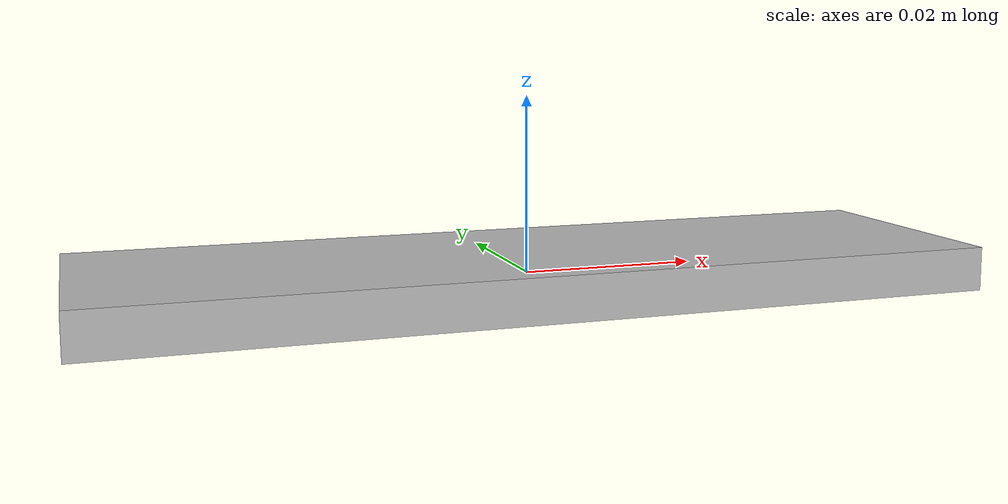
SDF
<?xml version="1.0" ?>
<sdf version="1.9">
	<model name="rfid-tag">
		<static>true</static>
		<link name="rfid-tag-link">
			<pose>0 0 0 0 0 0</pose>

			<collision name="rfid-tag-collision">
				<geometry>
					<box><size>0.1 0.03 0.005</size></box>
				</geometry>
			</collision>

			<visual name="rfid-tag-visual">
				<geometry>
					<box><size>0.1 0.03 0.005</size></box>
				</geometry>
				<material>
					<emissive>1 0 0 1</emissive>
				</material>
			</visual>

			<inertial>
				<mass>0.05</mass>
				<inertia>
					<ixx>1</ixx>
					<iyy>1</iyy>
					<izz>1</izz>
				</inertia>
			</inertial>

		</link>

	</model>
</sdf>
